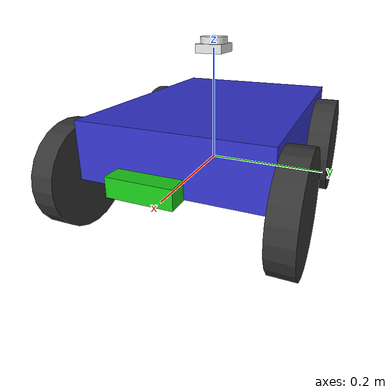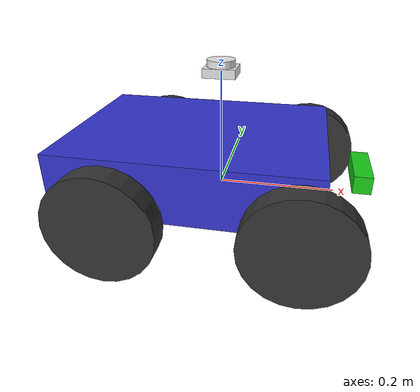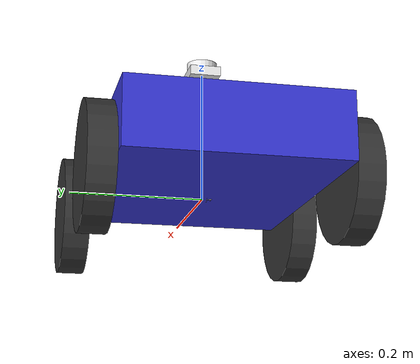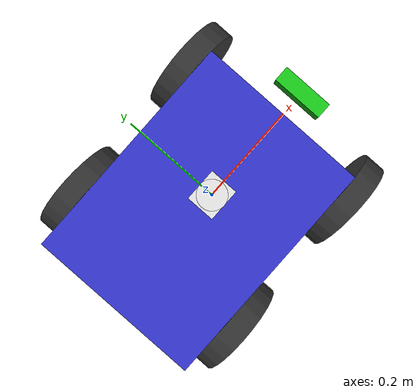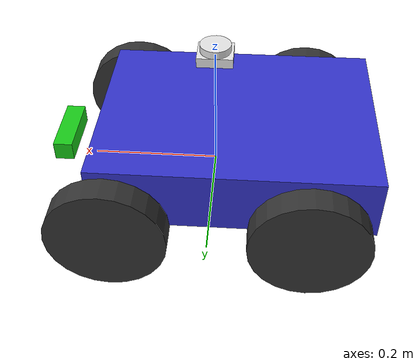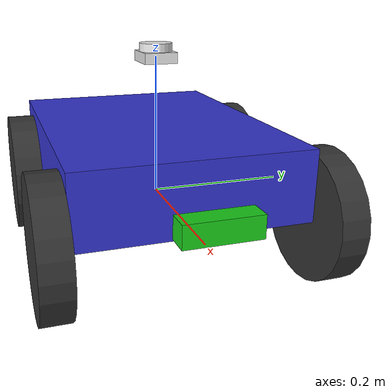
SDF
<?xml version="1.0" ?>
<!--
  Custom 4-wheel differential drive robot with LD19 lidar
  Configured for Hector SLAM (odometry TF publishing disabled)
-->
<sdf version="1.8">
  <model name="custom_4wheel_robot">
    <pose>0.0 0.0 0.0 0.0 0.0 0.0</pose>

    <link name="base_footprint"/>

    <link name="base_link">
      <inertial>
        <pose>-0.035 0 0.05 0 0 0</pose>
        <inertia>
          <ixx>0.054</ixx>
          <ixy>0</ixy>
          <ixz>0</ixz>
          <iyy>0.096</iyy>
          <iyz>0</iyz>
          <izz>0.126</izz>
        </inertia>
        <mass>5.0</mass>
      </inertial>

      <collision name="base_collision">
        <pose>-0.035 0 0.05 0 0 0</pose>
        <geometry>
          <box>
            <size>0.43 0.32 0.10</size>
          </box>
        </geometry>
      </collision>

      <visual name="base_visual">
        <pose>-0.035 0 0.05 0 0 0</pose>
        <geometry>
          <box>
            <size>0.43 0.32 0.10</size>
          </box>
        </geometry>
        <material>
          <ambient>0.2 0.2 0.8 1.0</ambient>
          <diffuse>0.2 0.2 0.8 1.0</diffuse>
        </material>
      </visual>
    </link>

    <!-- Front Left Wheel -->
    <link name="front_left_wheel">
      <inertial>
        <pose>0.15 0.182 0 -1.5707 0 0</pose>
        <inertia>
          <ixx>0.00106</ixx>
          <ixy>0</ixy>
          <ixz>0</ixz>
          <iyy>0.00106</iyy>
          <iyz>0</iyz>
          <izz>0.00169</izz>
        </inertia>
        <mass>0.5</mass>
      </inertial>

      <collision name="front_left_wheel_collision">
        <pose>0.15 0.182 0 -1.5707 0 0</pose>
        <geometry>
          <cylinder>
            <radius>0.092</radius>
            <length>0.04</length>
          </cylinder>
        </geometry>
        <surface>
          <friction>
            <ode>
              <mu>1.0</mu>
              <mu2>1.0</mu2>
              <fdir1>0 0 0</fdir1>
              <slip1>0.0</slip1>
              <slip2>0.0</slip2>
            </ode>
          </friction>
          <contact>
            <ode>
              <soft_cfm>0</soft_cfm>
              <soft_erp>0.2</soft_erp>
              <kp>1e+5</kp>
              <kd>1</kd>
              <max_vel>0.01</max_vel>
              <min_depth>0.001</min_depth>
            </ode>
          </contact>
        </surface>
      </collision>

      <visual name="front_left_wheel_visual">
        <pose>0.15 0.182 0 -1.5707 0 0</pose>
        <geometry>
          <cylinder>
            <radius>0.092</radius>
            <length>0.04</length>
          </cylinder>
        </geometry>
        <material>
          <ambient>0.2 0.2 0.2 1.0</ambient>
          <diffuse>0.2 0.2 0.2 1.0</diffuse>
        </material>
      </visual>
    </link>

    <!-- Front Right Wheel -->
    <link name="front_right_wheel">
      <inertial>
        <pose>0.15 -0.182 0 -1.5707 0 0</pose>
        <inertia>
          <ixx>0.00106</ixx>
          <ixy>0</ixy>
          <ixz>0</ixz>
          <iyy>0.00106</iyy>
          <iyz>0</iyz>
          <izz>0.00169</izz>
        </inertia>
        <mass>0.5</mass>
      </inertial>

      <collision name="front_right_wheel_collision">
        <pose>0.15 -0.182 0 -1.5707 0 0</pose>
        <geometry>
          <cylinder>
            <radius>0.092</radius>
            <length>0.04</length>
          </cylinder>
        </geometry>
        <surface>
          <friction>
            <ode>
              <mu>1.0</mu>
              <mu2>1.0</mu2>
              <fdir1>0 0 0</fdir1>
              <slip1>0.0</slip1>
              <slip2>0.0</slip2>
            </ode>
          </friction>
          <contact>
            <ode>
              <soft_cfm>0</soft_cfm>
              <soft_erp>0.2</soft_erp>
              <kp>1e+5</kp>
              <kd>1</kd>
              <max_vel>0.01</max_vel>
              <min_depth>0.001</min_depth>
            </ode>
          </contact>
        </surface>
      </collision>

      <visual name="front_right_wheel_visual">
        <pose>0.15 -0.182 0 -1.5707 0 0</pose>
        <geometry>
          <cylinder>
            <radius>0.092</radius>
            <length>0.04</length>
          </cylinder>
        </geometry>
        <material>
          <ambient>0.2 0.2 0.2 1.0</ambient>
          <diffuse>0.2 0.2 0.2 1.0</diffuse>
        </material>
      </visual>
    </link>

    <!-- Rear Left Wheel -->
    <link name="rear_left_wheel">
      <inertial>
        <pose>-0.15 0.182 0 -1.5707 0 0</pose>
        <inertia>
          <ixx>0.00106</ixx>
          <ixy>0</ixy>
          <ixz>0</ixz>
          <iyy>0.00106</iyy>
          <iyz>0</iyz>
          <izz>0.00169</izz>
        </inertia>
        <mass>0.5</mass>
      </inertial>

      <collision name="rear_left_wheel_collision">
        <pose>-0.15 0.182 0 -1.5707 0 0</pose>
        <geometry>
          <cylinder>
            <radius>0.092</radius>
            <length>0.04</length>
          </cylinder>
        </geometry>
        <surface>
          <friction>
            <ode>
              <mu>1.0</mu>
              <mu2>1.0</mu2>
              <fdir1>0 0 0</fdir1>
              <slip1>0.0</slip1>
              <slip2>0.0</slip2>
            </ode>
          </friction>
          <contact>
            <ode>
              <soft_cfm>0</soft_cfm>
              <soft_erp>0.2</soft_erp>
              <kp>1e+5</kp>
              <kd>1</kd>
              <max_vel>0.01</max_vel>
              <min_depth>0.001</min_depth>
            </ode>
          </contact>
        </surface>
      </collision>

      <visual name="rear_left_wheel_visual">
        <pose>-0.15 0.182 0 -1.5707 0 0</pose>
        <geometry>
          <cylinder>
            <radius>0.092</radius>
            <length>0.04</length>
          </cylinder>
        </geometry>
        <material>
          <ambient>0.2 0.2 0.2 1.0</ambient>
          <diffuse>0.2 0.2 0.2 1.0</diffuse>
        </material>
      </visual>
    </link>

    <!-- Rear Right Wheel -->
    <link name="rear_right_wheel">
      <inertial>
        <pose>-0.15 -0.182 0 -1.5707 0 0</pose>
        <inertia>
          <ixx>0.00106</ixx>
          <ixy>0</ixy>
          <ixz>0</ixz>
          <iyy>0.00106</iyy>
          <iyz>0</iyz>
          <izz>0.00169</izz>
        </inertia>
        <mass>0.5</mass>
      </inertial>

      <collision name="rear_right_wheel_collision">
        <pose>-0.15 -0.182 0 -1.5707 0 0</pose>
        <geometry>
          <cylinder>
            <radius>0.092</radius>
            <length>0.04</length>
          </cylinder>
        </geometry>
        <surface>
          <friction>
            <ode>
              <mu>1.0</mu>
              <mu2>1.0</mu2>
              <fdir1>0 0 0</fdir1>
              <slip1>0.0</slip1>
              <slip2>0.0</slip2>
            </ode>
          </friction>
          <contact>
            <ode>
              <soft_cfm>0</soft_cfm>
              <soft_erp>0.2</soft_erp>
              <kp>1e+5</kp>
              <kd>1</kd>
              <max_vel>0.01</max_vel>
              <min_depth>0.001</min_depth>
            </ode>
          </contact>
        </surface>
      </collision>

      <visual name="rear_right_wheel_visual">
        <pose>-0.15 -0.182 0 -1.5707 0 0</pose>
        <geometry>
          <cylinder>
            <radius>0.092</radius>
            <length>0.04</length>
          </cylinder>
        </geometry>
        <material>
          <ambient>0.2 0.2 0.2 1.0</ambient>
          <diffuse>0.2 0.2 0.2 1.0</diffuse>
        </material>
      </visual>
    </link>

    <!-- Lidar Post -->
    <link name="lidar_post">
      <inertial>
        <pose>0 0 0.025 0 0 0</pose>
        <inertia>
          <ixx>0.000004</ixx>
          <ixy>0</ixy>
          <ixz>0</ixz>
          <iyy>0.000004</iyy>
          <iyz>0</iyz>
          <izz>0.000001</izz>
        </inertia>
        <mass>0.02</mass>
      </inertial>

      <collision name="lidar_post_collision">
        <pose>0 0 0.025 0 0 0</pose>
        <geometry>
          <cylinder>
            <radius>0.015</radius>
            <length>0.05</length>
          </cylinder>
        </geometry>
      </collision>

      <visual name="lidar_post_visual">
        <pose>0 0 0.025 0 0 0</pose>
        <geometry>
          <cylinder>
            <radius>0.015</radius>
            <length>0.05</length>
          </cylinder>
        </geometry>
        <material>
          <ambient>0.9 0.9 0.9 1.0</ambient>
          <diffuse>0.9 0.9 0.9 1.0</diffuse>
        </material>
      </visual>
    </link>

    <!-- LD19 Lidar -->
    <link name="base_scan">
      <inertial>
        <pose>0 0 0.20 0 0 0</pose>
        <inertia>
          <ixx>0.00001</ixx>
          <ixy>0</ixy>
          <ixz>0</ixz>
          <iyy>0.00001</iyy>
          <iyz>0</iyz>
          <izz>0.00001</izz>
        </inertia>
        <mass>0.035</mass>
      </inertial>

      <!-- Mounting base/bracket -->
      <visual name="lidar_base">
        <pose>0 0 0.20 0 0 0</pose>
        <geometry>
          <box>
            <size>0.054 0.0468 0.015</size>
          </box>
        </geometry>
        <material>
          <ambient>0.9 0.9 0.9 1.0</ambient>
          <diffuse>0.9 0.9 0.9 1.0</diffuse>
        </material>
      </visual>

      <!-- Main cylindrical body -->
      <visual name="lidar_body">
        <pose>0 0 0.2095 0 0 0</pose>
        <geometry>
          <cylinder>
            <radius>0.0234</radius>
            <length>0.019</length>
          </cylinder>
        </geometry>
        <material>
          <ambient>0.9 0.9 0.9 1.0</ambient>
          <diffuse>0.9 0.9 0.9 1.0</diffuse>
        </material>
      </visual>

      <!-- Top scanning window/dome -->
      <visual name="lidar_dome">
        <pose>0 0 0.214 0 0 0</pose>
        <geometry>
          <cylinder>
            <radius>0.018</radius>
            <length>0.009</length>
          </cylinder>
        </geometry>
        <material>
          <ambient>0.2 0.2 0.2 0.8</ambient>
          <diffuse>0.2 0.2 0.2 0.8</diffuse>
        </material>
      </visual>

      <!-- Collision geometry -->
      <collision name="lidar_collision">
        <pose>0 0 0.2065 0 0 0</pose>
        <geometry>
          <cylinder>
            <radius>0.027</radius>
            <length>0.043</length>
          </cylinder>
        </geometry>
      </collision>

      <!-- LD19 Lidar Sensor (10Hz, 12m range, 360 degrees, 450 samples) -->
      <sensor name="ld19_lidar" type="gpu_lidar">
        <always_on>true</always_on>
        <visualize>true</visualize>
        <pose>0 0 0.20 0 0 0</pose>
        <update_rate>10</update_rate>
        <topic>scan</topic>
        <gz_frame_id>base_scan</gz_frame_id>
        <ray>
          <scan>
            <horizontal>
              <samples>450</samples>
              <resolution>1.0</resolution>
              <min_angle>0.0</min_angle>
              <max_angle>6.28318530718</max_angle>
            </horizontal>
          </scan>
          <range>
            <min>0.05</min>
            <max>12.0</max>
            <resolution>0.01</resolution>
          </range>
          <noise>
            <type>gaussian</type>
            <mean>0.0</mean>
            <stddev>0.02</stddev>
          </noise>
        </ray>
      </sensor>
    </link>

    <!-- Camera -->
    <link name="camera_link">
      <inertial>
        <pose>0.24 0 0.04 0 0 0</pose>
        <inertia>
          <ixx>0.00008583</ixx>
          <ixy>0</ixy>
          <ixz>0</ixz>
          <iyy>0.00006083</iyy>
          <iyz>0</iyz>
          <izz>0.00002583</izz>
        </inertia>
        <mass>0.1</mass>
      </inertial>

      <collision name="camera_collision">
        <pose>0.24 0 0.04 0 0 0</pose>
        <geometry>
          <box>
            <size>0.03 0.1 0.03</size>
          </box>
        </geometry>
      </collision>

      <visual name="camera_visual">
        <pose>0.24 0 0.04 0 0 0</pose>
        <geometry>
          <box>
            <size>0.03 0.1 0.03</size>
          </box>
        </geometry>
        <material>
          <ambient>0.1 0.8 0.1 1.0</ambient>
          <diffuse>0.1 0.8 0.1 1.0</diffuse>
        </material>
      </visual>

      <!-- Camera Sensor (640x480, 30Hz, 60° FOV) -->
      <sensor name="camera_sensor" type="camera">
        <always_on>true</always_on>
        <visualize>true</visualize>
        <pose>0.24 0 0.04 0 0 0</pose>
        <update_rate>30</update_rate>
        <topic>camera/image_raw</topic>
        <gz_frame_id>camera_link</gz_frame_id>
        <camera name="camera">
          <camera_info_topic>camera/camera_info</camera_info_topic>
          <horizontal_fov>1.047</horizontal_fov>
          <image>
            <width>640</width>
            <height>480</height>
            <format>R8G8B8</format>
          </image>
          <clip>
            <near>0.1</near>
            <far>100</far>
          </clip>
          <noise>
            <type>gaussian</type>
            <mean>0.0</mean>
            <stddev>0.007</stddev>
          </noise>
        </camera>
      </sensor>
    </link>

    <!-- IMU -->
    <link name="imu_link">
      <sensor name="imu_sensor" type="imu">
        <always_on>true</always_on>
        <update_rate>100</update_rate>
        <topic>imu</topic>
        <imu>
          <angular_velocity>
            <x>
              <noise type="gaussian">
                <mean>0.0</mean>
                <stddev>2e-4</stddev>
              </noise>
            </x>
            <y>
              <noise type="gaussian">
                <mean>0.0</mean>
                <stddev>2e-4</stddev>
              </noise>
            </y>
            <z>
              <noise type="gaussian">
                <mean>0.0</mean>
                <stddev>2e-4</stddev>
              </noise>
            </z>
          </angular_velocity>
          <linear_acceleration>
            <x>
              <noise type="gaussian">
                <mean>0.0</mean>
                <stddev>1.7e-2</stddev>
              </noise>
            </x>
            <y>
              <noise type="gaussian">
                <mean>0.0</mean>
                <stddev>1.7e-2</stddev>
              </noise>
            </y>
            <z>
              <noise type="gaussian">
                <mean>0.0</mean>
                <stddev>1.7e-2</stddev>
              </noise>
            </z>
          </linear_acceleration>
        </imu>
      </sensor>
    </link>

    <!-- Joints -->
    <joint name="base_joint" type="fixed">
      <parent>base_footprint</parent>
      <child>base_link</child>
      <pose>0.0 0.0 0.092 0 0 0</pose>
    </joint>

    <joint name="front_left_wheel_joint" type="revolute">
      <parent>base_link</parent>
      <child>front_left_wheel</child>
      <pose>0.15 0.202 0 0 0 0</pose>
      <axis>
        <xyz>0 1 0</xyz>
        <limit>
          <effort>10</effort>
        </limit>
      </axis>
    </joint>

    <joint name="front_right_wheel_joint" type="revolute">
      <parent>base_link</parent>
      <child>front_right_wheel</child>
      <pose>0.15 -0.202 0 0 0 0</pose>
      <axis>
        <xyz>0 1 0</xyz>
        <limit>
          <effort>10</effort>
        </limit>
      </axis>
    </joint>

    <joint name="rear_left_wheel_joint" type="revolute">
      <parent>base_link</parent>
      <child>rear_left_wheel</child>
      <pose>-0.15 0.202 0 0 0 0</pose>
      <axis>
        <xyz>0 1 0</xyz>
        <limit>
          <effort>10</effort>
        </limit>
      </axis>
    </joint>

    <joint name="rear_right_wheel_joint" type="revolute">
      <parent>base_link</parent>
      <child>rear_right_wheel</child>
      <pose>-0.15 -0.202 0 0 0 0</pose>
      <axis>
        <xyz>0 1 0</xyz>
        <limit>
          <effort>10</effort>
        </limit>
      </axis>
    </joint>

    <joint name="camera_joint" type="fixed">
      <parent>base_link</parent>
      <child>camera_link</child>
      <pose>0.195 0 0.05 0 0 0</pose>
    </joint>

    <joint name="imu_joint" type="fixed">
      <parent>base_link</parent>
      <child>imu_link</child>
      <pose>0 0 0.08 0 0 0</pose>
    </joint>

    <joint name="lidar_post_joint" type="fixed">
      <parent>base_link</parent>
      <child>lidar_post</child>
      <pose>-0.035 0 0.10 0 0 0</pose>
    </joint>

    <joint name="lidar_joint" type="fixed">
      <parent>lidar_post</parent>
      <child>base_scan</child>
      <pose>0 0 0.05 0 0 0</pose>
    </joint>

    <!-- Differential Drive Plugin -->
    <plugin filename="gz-sim-diff-drive-system" name="gz::sim::systems::DiffDrive">
      <!-- Left wheels -->
      <left_joint>front_left_wheel_joint</left_joint>
      <left_joint>rear_left_wheel_joint</left_joint>

      <!-- Right wheels -->
      <right_joint>front_right_wheel_joint</right_joint>
      <right_joint>rear_right_wheel_joint</right_joint>

      <!-- Kinematics -->
      <wheel_separation>0.3</wheel_separation>
      <wheel_radius>0.092</wheel_radius>

      <!-- Limits -->
      <max_linear_acceleration>1.0</max_linear_acceleration>
      <max_angular_acceleration>2.0</max_angular_acceleration>
      <max_linear_velocity>1.0</max_linear_velocity>
      <max_angular_velocity>2.0</max_angular_velocity>

      <!-- Topics -->
      <topic>cmd_vel</topic>
      <odom_topic>odom</odom_topic>

      <!-- Frames -->
      <frame_id>odom</frame_id>
      <child_frame_id>base_footprint</child_frame_id>
      <odom_publisher_frequency>30</odom_publisher_frequency>

      <!-- Disable TF publishing - Hector SLAM provides map->base_link -->
      <tf_topic></tf_topic>
    </plugin>

    <!-- Joint State Publisher -->
    <plugin filename="gz-sim-joint-state-publisher-system" name="gz::sim::systems::JointStatePublisher">
      <topic>joint_states</topic>
      <joint_name>front_left_wheel_joint</joint_name>
      <joint_name>front_right_wheel_joint</joint_name>
      <joint_name>rear_left_wheel_joint</joint_name>
      <joint_name>rear_right_wheel_joint</joint_name>
    </plugin>

  </model>
</sdf>
